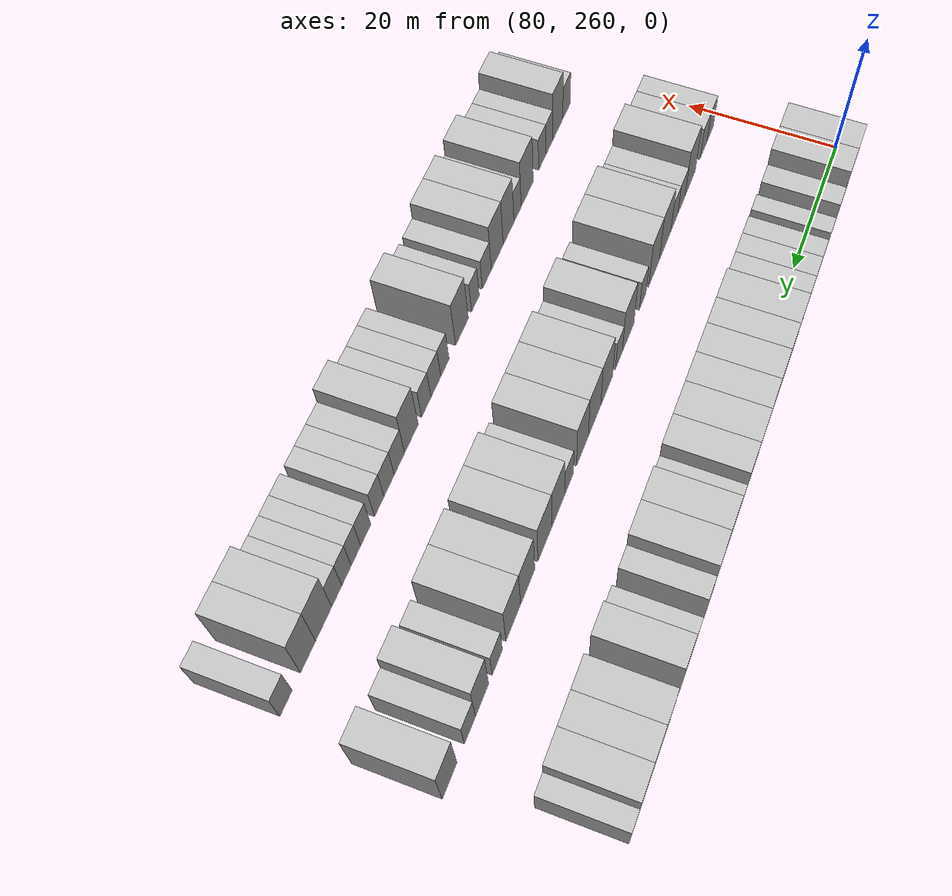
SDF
<sdf version="1.6">
 <world name="default">
  <model name="building_679">
   <static>1</static>
   <pose>82.0000 264.7069 0 0.000000 0.000000 0.000000</pose>
   <link name="link">
    <pose>0 0 4.50 0 0 0</pose>
    <collision name="collision"><geometry><box><size>10.0000 3.9704 9.0000</size></box></geometry></collision>
    <visual name="visual">
     <cast_shadows>0</cast_shadows>
     <geometry><box><size>10.0000 3.9704 9.0000</size></box></geometry>
     <material>
      <script>
       <uri>model://HANNAS_wall/materials/scripts</uri>
       <uri>model://HANNAS_wall/materials/textures</uri>
       <name>vrc/HANNAS_wall</name>
      </script>
     </material>
    </visual>
   </link>
  </model>
  <model name="building_680">
   <static>1</static>
   <pose>82.0000 268.6037 0 0.000000 0.000000 0.000000</pose>
   <link name="link">
    <pose>0 0 4.50 0 0 0</pose>
    <collision name="collision"><geometry><box><size>10.0000 3.8233 9.0000</size></box></geometry></collision>
    <visual name="visual">
     <cast_shadows>0</cast_shadows>
     <geometry><box><size>10.0000 3.8233 9.0000</size></box></geometry>
     <material>
      <script>
       <uri>model://HANNAS_wall/materials/scripts</uri>
       <uri>model://HANNAS_wall/materials/textures</uri>
       <name>vrc/HANNAS_wall</name>
      </script>
     </material>
    </visual>
   </link>
  </model>
  <model name="building_681">
   <static>1</static>
   <pose>82.0000 271.9528 0 0.000000 0.000000 0.000000</pose>
   <link name="link">
    <pose>0 0 3.00 0 0 0</pose>
    <collision name="collision"><geometry><box><size>10.0000 2.8749 6.0000</size></box></geometry></collision>
    <visual name="visual">
     <cast_shadows>0</cast_shadows>
     <geometry><box><size>10.0000 2.8749 6.0000</size></box></geometry>
     <material>
      <script>
       <uri>model://HANNAS_wall/materials/scripts</uri>
       <uri>model://HANNAS_wall/materials/textures</uri>
       <name>vrc/HANNAS_wall</name>
      </script>
     </material>
    </visual>
   </link>
  </model>
  <model name="building_682">
   <static>1</static>
   <pose>82.0000 276.6051 0 0.000000 0.000000 0.000000</pose>
   <link name="link">
    <pose>0 0 3.00 0 0 0</pose>
    <collision name="collision"><geometry><box><size>10.0000 2.4295 6.0000</size></box></geometry></collision>
    <visual name="visual">
     <cast_shadows>0</cast_shadows>
     <geometry><box><size>10.0000 2.4295 6.0000</size></box></geometry>
     <material>
      <script>
       <uri>model://HANNAS_wall/materials/scripts</uri>
       <uri>model://HANNAS_wall/materials/textures</uri>
       <name>vrc/HANNAS_wall</name>
      </script>
     </material>
    </visual>
   </link>
  </model>
  <model name="building_683">
   <static>1</static>
   <pose>82.0000 280.1371 0 0.000000 0.000000 0.000000</pose>
   <link name="link">
    <pose>0 0 3.00 0 0 0</pose>
    <collision name="collision"><geometry><box><size>10.0000 2.6345 6.0000</size></box></geometry></collision>
    <visual name="visual">
     <cast_shadows>0</cast_shadows>
     <geometry><box><size>10.0000 2.6345 6.0000</size></box></geometry>
     <material>
      <script>
       <uri>model://HANNAS_wall/materials/scripts</uri>
       <uri>model://HANNAS_wall/materials/textures</uri>
       <name>vrc/HANNAS_wall</name>
      </script>
     </material>
    </visual>
   </link>
  </model>
  <model name="building_684">
   <static>1</static>
   <pose>82.0000 282.9017 0 0.000000 0.000000 0.000000</pose>
   <link name="link">
    <pose>0 0 3.00 0 0 0</pose>
    <collision name="collision"><geometry><box><size>10.0000 2.8947 6.0000</size></box></geometry></collision>
    <visual name="visual">
     <cast_shadows>0</cast_shadows>
     <geometry><box><size>10.0000 2.8947 6.0000</size></box></geometry>
     <material>
      <script>
       <uri>model://HANNAS_wall/materials/scripts</uri>
       <uri>model://HANNAS_wall/materials/textures</uri>
       <name>vrc/HANNAS_wall</name>
      </script>
     </material>
    </visual>
   </link>
  </model>
  <model name="building_685">
   <static>1</static>
   <pose>82.0000 285.6525 0 0.000000 0.000000 0.000000</pose>
   <link name="link">
    <pose>0 0 3.00 0 0 0</pose>
    <collision name="collision"><geometry><box><size>10.0000 2.6069 6.0000</size></box></geometry></collision>
    <visual name="visual">
     <cast_shadows>0</cast_shadows>
     <geometry><box><size>10.0000 2.6069 6.0000</size></box></geometry>
     <material>
      <script>
       <uri>model://HANNAS_wall/materials/scripts</uri>
       <uri>model://HANNAS_wall/materials/textures</uri>
       <name>vrc/HANNAS_wall</name>
      </script>
     </material>
    </visual>
   </link>
  </model>
  <model name="building_686">
   <static>1</static>
   <pose>82.0000 291.0677 0 0.000000 0.000000 0.000000</pose>
   <link name="link">
    <pose>0 0 4.50 0 0 0</pose>
    <collision name="collision"><geometry><box><size>10.0000 4.2234 9.0000</size></box></geometry></collision>
    <visual name="visual">
     <cast_shadows>0</cast_shadows>
     <geometry><box><size>10.0000 4.2234 9.0000</size></box></geometry>
     <material>
      <script>
       <uri>model://HANNAS_wall/materials/scripts</uri>
       <uri>model://HANNAS_wall/materials/textures</uri>
       <name>vrc/HANNAS_wall</name>
      </script>
     </material>
    </visual>
   </link>
  </model>
  <model name="building_687">
   <static>1</static>
   <pose>82.0000 294.9808 0 0.000000 0.000000 0.000000</pose>
   <link name="link">
    <pose>0 0 4.50 0 0 0</pose>
    <collision name="collision"><geometry><box><size>10.0000 3.6028 9.0000</size></box></geometry></collision>
    <visual name="visual">
     <cast_shadows>0</cast_shadows>
     <geometry><box><size>10.0000 3.6028 9.0000</size></box></geometry>
     <material>
      <script>
       <uri>model://HANNAS_wall/materials/scripts</uri>
       <uri>model://HANNAS_wall/materials/textures</uri>
       <name>vrc/HANNAS_wall</name>
      </script>
     </material>
    </visual>
   </link>
  </model>
  <model name="building_688">
   <static>1</static>
   <pose>82.0000 298.7942 0 0.000000 0.000000 0.000000</pose>
   <link name="link">
    <pose>0 0 4.50 0 0 0</pose>
    <collision name="collision"><geometry><box><size>10.0000 4.0241 9.0000</size></box></geometry></collision>
    <visual name="visual">
     <cast_shadows>0</cast_shadows>
     <geometry><box><size>10.0000 4.0241 9.0000</size></box></geometry>
     <material>
      <script>
       <uri>model://HANNAS_wall/materials/scripts</uri>
       <uri>model://HANNAS_wall/materials/textures</uri>
       <name>vrc/HANNAS_wall</name>
      </script>
     </material>
    </visual>
   </link>
  </model>
  <model name="building_689">
   <static>1</static>
   <pose>82.0000 302.7823 0 0.000000 0.000000 0.000000</pose>
   <link name="link">
    <pose>0 0 4.50 0 0 0</pose>
    <collision name="collision"><geometry><box><size>10.0000 3.9522 9.0000</size></box></geometry></collision>
    <visual name="visual">
     <cast_shadows>0</cast_shadows>
     <geometry><box><size>10.0000 3.9522 9.0000</size></box></geometry>
     <material>
      <script>
       <uri>model://HANNAS_wall/materials/scripts</uri>
       <uri>model://HANNAS_wall/materials/textures</uri>
       <name>vrc/HANNAS_wall</name>
      </script>
     </material>
    </visual>
   </link>
  </model>
  <model name="building_690">
   <static>1</static>
   <pose>82.0000 306.9329 0 0.000000 0.000000 0.000000</pose>
   <link name="link">
    <pose>0 0 4.50 0 0 0</pose>
    <collision name="collision"><geometry><box><size>10.0000 4.3490 9.0000</size></box></geometry></collision>
    <visual name="visual">
     <cast_shadows>0</cast_shadows>
     <geometry><box><size>10.0000 4.3490 9.0000</size></box></geometry>
     <material>
      <script>
       <uri>model://HANNAS_wall/materials/scripts</uri>
       <uri>model://HANNAS_wall/materials/textures</uri>
       <name>vrc/HANNAS_wall</name>
      </script>
     </material>
    </visual>
   </link>
  </model>
  <model name="building_691">
   <static>1</static>
   <pose>82.0000 311.0670 0 0.000000 0.000000 0.000000</pose>
   <link name="link">
    <pose>0 0 4.50 0 0 0</pose>
    <collision name="collision"><geometry><box><size>10.0000 3.9192 9.0000</size></box></geometry></collision>
    <visual name="visual">
     <cast_shadows>0</cast_shadows>
     <geometry><box><size>10.0000 3.9192 9.0000</size></box></geometry>
     <material>
      <script>
       <uri>model://HANNAS_wall/materials/scripts</uri>
       <uri>model://HANNAS_wall/materials/textures</uri>
       <name>vrc/HANNAS_wall</name>
      </script>
     </material>
    </visual>
   </link>
  </model>
  <model name="building_692">
   <static>1</static>
   <pose>82.0000 314.4142 0 0.000000 0.000000 0.000000</pose>
   <link name="link">
    <pose>0 0 3.00 0 0 0</pose>
    <collision name="collision"><geometry><box><size>10.0000 2.7752 6.0000</size></box></geometry></collision>
    <visual name="visual">
     <cast_shadows>0</cast_shadows>
     <geometry><box><size>10.0000 2.7752 6.0000</size></box></geometry>
     <material>
      <script>
       <uri>model://HANNAS_wall/materials/scripts</uri>
       <uri>model://HANNAS_wall/materials/textures</uri>
       <name>vrc/HANNAS_wall</name>
      </script>
     </material>
    </visual>
   </link>
  </model>
  <model name="building_693">
   <static>1</static>
   <pose>82.0000 317.8667 0 0.000000 0.000000 0.000000</pose>
   <link name="link">
    <pose>0 0 4.50 0 0 0</pose>
    <collision name="collision"><geometry><box><size>10.0000 4.1298 9.0000</size></box></geometry></collision>
    <visual name="visual">
     <cast_shadows>0</cast_shadows>
     <geometry><box><size>10.0000 4.1298 9.0000</size></box></geometry>
     <material>
      <script>
       <uri>model://HANNAS_wall/materials/scripts</uri>
       <uri>model://HANNAS_wall/materials/textures</uri>
       <name>vrc/HANNAS_wall</name>
      </script>
     </material>
    </visual>
   </link>
  </model>
  <model name="building_694">
   <static>1</static>
   <pose>82.0000 322.0335 0 0.000000 0.000000 0.000000</pose>
   <link name="link">
    <pose>0 0 4.50 0 0 0</pose>
    <collision name="collision"><geometry><box><size>10.0000 4.2038 9.0000</size></box></geometry></collision>
    <visual name="visual">
     <cast_shadows>0</cast_shadows>
     <geometry><box><size>10.0000 4.2038 9.0000</size></box></geometry>
     <material>
      <script>
       <uri>model://HANNAS_wall/materials/scripts</uri>
       <uri>model://HANNAS_wall/materials/textures</uri>
       <name>vrc/HANNAS_wall</name>
      </script>
     </material>
    </visual>
   </link>
  </model>
  <model name="building_695">
   <static>1</static>
   <pose>82.0000 325.5209 0 0.000000 0.000000 0.000000</pose>
   <link name="link">
    <pose>0 0 3.00 0 0 0</pose>
    <collision name="collision"><geometry><box><size>10.0000 2.7710 6.0000</size></box></geometry></collision>
    <visual name="visual">
     <cast_shadows>0</cast_shadows>
     <geometry><box><size>10.0000 2.7710 6.0000</size></box></geometry>
     <material>
      <script>
       <uri>model://HANNAS_wall/materials/scripts</uri>
       <uri>model://HANNAS_wall/materials/textures</uri>
       <name>vrc/HANNAS_wall</name>
      </script>
     </material>
    </visual>
   </link>
  </model>
  <model name="building_696">
   <static>1</static>
   <pose>82.0000 330.3603 0 0.000000 0.000000 0.000000</pose>
   <link name="link">
    <pose>0 0 3.00 0 0 0</pose>
    <collision name="collision"><geometry><box><size>10.0000 2.9077 6.0000</size></box></geometry></collision>
    <visual name="visual">
     <cast_shadows>0</cast_shadows>
     <geometry><box><size>10.0000 2.9077 6.0000</size></box></geometry>
     <material>
      <script>
       <uri>model://HANNAS_wall/materials/scripts</uri>
       <uri>model://HANNAS_wall/materials/textures</uri>
       <name>vrc/HANNAS_wall</name>
      </script>
     </material>
    </visual>
   </link>
  </model>
  <model name="building_697">
   <static>1</static>
   <pose>82.0000 333.7174 0 0.000000 0.000000 0.000000</pose>
   <link name="link">
    <pose>0 0 4.50 0 0 0</pose>
    <collision name="collision"><geometry><box><size>10.0000 3.8065 9.0000</size></box></geometry></collision>
    <visual name="visual">
     <cast_shadows>0</cast_shadows>
     <geometry><box><size>10.0000 3.8065 9.0000</size></box></geometry>
     <material>
      <script>
       <uri>model://HANNAS_wall/materials/scripts</uri>
       <uri>model://HANNAS_wall/materials/textures</uri>
       <name>vrc/HANNAS_wall</name>
      </script>
     </material>
    </visual>
   </link>
  </model>
  <model name="building_698">
   <static>1</static>
   <pose>82.0000 339.5370 0 0.000000 0.000000 0.000000</pose>
   <link name="link">
    <pose>0 0 4.50 0 0 0</pose>
    <collision name="collision"><geometry><box><size>10.0000 3.8326 9.0000</size></box></geometry></collision>
    <visual name="visual">
     <cast_shadows>0</cast_shadows>
     <geometry><box><size>10.0000 3.8326 9.0000</size></box></geometry>
     <material>
      <script>
       <uri>model://HANNAS_wall/materials/scripts</uri>
       <uri>model://HANNAS_wall/materials/textures</uri>
       <name>vrc/HANNAS_wall</name>
      </script>
     </material>
    </visual>
   </link>
  </model>
  <model name="building_699">
   <static>1</static>
   <pose>82.0000 343.3597 0 0.000000 0.000000 0.000000</pose>
   <link name="link">
    <pose>0 0 4.50 0 0 0</pose>
    <collision name="collision"><geometry><box><size>10.0000 3.8127 9.0000</size></box></geometry></collision>
    <visual name="visual">
     <cast_shadows>0</cast_shadows>
     <geometry><box><size>10.0000 3.8127 9.0000</size></box></geometry>
     <material>
      <script>
       <uri>model://HANNAS_wall/materials/scripts</uri>
       <uri>model://HANNAS_wall/materials/textures</uri>
       <name>vrc/HANNAS_wall</name>
      </script>
     </material>
    </visual>
   </link>
  </model>
  <model name="building_700">
   <static>1</static>
   <pose>82.0000 347.2621 0 0.000000 0.000000 0.000000</pose>
   <link name="link">
    <pose>0 0 4.50 0 0 0</pose>
    <collision name="collision"><geometry><box><size>10.0000 3.9921 9.0000</size></box></geometry></collision>
    <visual name="visual">
     <cast_shadows>0</cast_shadows>
     <geometry><box><size>10.0000 3.9921 9.0000</size></box></geometry>
     <material>
      <script>
       <uri>model://HANNAS_wall/materials/scripts</uri>
       <uri>model://HANNAS_wall/materials/textures</uri>
       <name>vrc/HANNAS_wall</name>
      </script>
     </material>
    </visual>
   </link>
  </model>
  <model name="building_701">
   <static>1</static>
   <pose>82.0000 350.4626 0 0.000000 0.000000 0.000000</pose>
   <link name="link">
    <pose>0 0 3.00 0 0 0</pose>
    <collision name="collision"><geometry><box><size>10.0000 2.4090 6.0000</size></box></geometry></collision>
    <visual name="visual">
     <cast_shadows>0</cast_shadows>
     <geometry><box><size>10.0000 2.4090 6.0000</size></box></geometry>
     <material>
      <script>
       <uri>model://HANNAS_wall/materials/scripts</uri>
       <uri>model://HANNAS_wall/materials/textures</uri>
       <name>vrc/HANNAS_wall</name>
      </script>
     </material>
    </visual>
   </link>
  </model>
  <model name="building_861">
   <static>1</static>
   <pose>101.0000 263.6172 0 0.000000 0.000000 0.000000</pose>
   <link name="link">
    <pose>0 0 3.00 0 0 0</pose>
    <collision name="collision"><geometry><box><size>10.0000 2.8604 6.0000</size></box></geometry></collision>
    <visual name="visual">
     <cast_shadows>0</cast_shadows>
     <geometry><box><size>10.0000 2.8604 6.0000</size></box></geometry>
     <material>
      <script>
       <uri>model://HANNAS_wall/materials/scripts</uri>
       <uri>model://HANNAS_wall/materials/textures</uri>
       <name>vrc/HANNAS_wall</name>
      </script>
     </material>
    </visual>
   </link>
  </model>
  <model name="building_862">
   <static>1</static>
   <pose>101.0000 266.5364 0 0.000000 0.000000 0.000000</pose>
   <link name="link">
    <pose>0 0 3.00 0 0 0</pose>
    <collision name="collision"><geometry><box><size>10.0000 2.9781 6.0000</size></box></geometry></collision>
    <visual name="visual">
     <cast_shadows>0</cast_shadows>
     <geometry><box><size>10.0000 2.9781 6.0000</size></box></geometry>
     <material>
      <script>
       <uri>model://HANNAS_wall/materials/scripts</uri>
       <uri>model://HANNAS_wall/materials/textures</uri>
       <name>vrc/HANNAS_wall</name>
      </script>
     </material>
    </visual>
   </link>
  </model>
  <model name="building_863">
   <static>1</static>
   <pose>101.0000 272.2282 0 0.000000 0.000000 0.000000</pose>
   <link name="link">
    <pose>0 0 4.50 0 0 0</pose>
    <collision name="collision"><geometry><box><size>10.0000 4.4056 9.0000</size></box></geometry></collision>
    <visual name="visual">
     <cast_shadows>0</cast_shadows>
     <geometry><box><size>10.0000 4.4056 9.0000</size></box></geometry>
     <material>
      <script>
       <uri>model://HANNAS_wall/materials/scripts</uri>
       <uri>model://HANNAS_wall/materials/textures</uri>
       <name>vrc/HANNAS_wall</name>
      </script>
     </material>
    </visual>
   </link>
  </model>
  <model name="building_864">
   <static>1</static>
   <pose>101.0000 275.9301 0 0.000000 0.000000 0.000000</pose>
   <link name="link">
    <pose>0 0 3.00 0 0 0</pose>
    <collision name="collision"><geometry><box><size>10.0000 2.9982 6.0000</size></box></geometry></collision>
    <visual name="visual">
     <cast_shadows>0</cast_shadows>
     <geometry><box><size>10.0000 2.9982 6.0000</size></box></geometry>
     <material>
      <script>
       <uri>model://HANNAS_wall/materials/scripts</uri>
       <uri>model://HANNAS_wall/materials/textures</uri>
       <name>vrc/HANNAS_wall</name>
      </script>
     </material>
    </visual>
   </link>
  </model>
  <model name="building_865">
   <static>1</static>
   <pose>101.0000 278.8644 0 0.000000 0.000000 0.000000</pose>
   <link name="link">
    <pose>0 0 3.00 0 0 0</pose>
    <collision name="collision"><geometry><box><size>10.0000 2.8704 6.0000</size></box></geometry></collision>
    <visual name="visual">
     <cast_shadows>0</cast_shadows>
     <geometry><box><size>10.0000 2.8704 6.0000</size></box></geometry>
     <material>
      <script>
       <uri>model://HANNAS_wall/materials/scripts</uri>
       <uri>model://HANNAS_wall/materials/textures</uri>
       <name>vrc/HANNAS_wall</name>
      </script>
     </material>
    </visual>
   </link>
  </model>
  <model name="building_866">
   <static>1</static>
   <pose>101.0000 282.5377 0 0.000000 0.000000 0.000000</pose>
   <link name="link">
    <pose>0 0 4.50 0 0 0</pose>
    <collision name="collision"><geometry><box><size>10.0000 4.4762 9.0000</size></box></geometry></collision>
    <visual name="visual">
     <cast_shadows>0</cast_shadows>
     <geometry><box><size>10.0000 4.4762 9.0000</size></box></geometry>
     <material>
      <script>
       <uri>model://HANNAS_wall/materials/scripts</uri>
       <uri>model://HANNAS_wall/materials/textures</uri>
       <name>vrc/HANNAS_wall</name>
      </script>
     </material>
    </visual>
   </link>
  </model>
  <model name="building_867">
   <static>1</static>
   <pose>101.0000 286.8789 0 0.000000 0.000000 0.000000</pose>
   <link name="link">
    <pose>0 0 4.50 0 0 0</pose>
    <collision name="collision"><geometry><box><size>10.0000 4.2062 9.0000</size></box></geometry></collision>
    <visual name="visual">
     <cast_shadows>0</cast_shadows>
     <geometry><box><size>10.0000 4.2062 9.0000</size></box></geometry>
     <material>
      <script>
       <uri>model://HANNAS_wall/materials/scripts</uri>
       <uri>model://HANNAS_wall/materials/textures</uri>
       <name>vrc/HANNAS_wall</name>
      </script>
     </material>
    </visual>
   </link>
  </model>
  <model name="building_868">
   <static>1</static>
   <pose>101.0000 291.2437 0 0.000000 0.000000 0.000000</pose>
   <link name="link">
    <pose>0 0 3.00 0 0 0</pose>
    <collision name="collision"><geometry><box><size>10.0000 2.5235 6.0000</size></box></geometry></collision>
    <visual name="visual">
     <cast_shadows>0</cast_shadows>
     <geometry><box><size>10.0000 2.5235 6.0000</size></box></geometry>
     <material>
      <script>
       <uri>model://HANNAS_wall/materials/scripts</uri>
       <uri>model://HANNAS_wall/materials/textures</uri>
       <name>vrc/HANNAS_wall</name>
      </script>
     </material>
    </visual>
   </link>
  </model>
  <model name="building_869">
   <static>1</static>
   <pose>101.0000 296.6706 0 0.000000 0.000000 0.000000</pose>
   <link name="link">
    <pose>0 0 4.50 0 0 0</pose>
    <collision name="collision"><geometry><box><size>10.0000 4.3302 9.0000</size></box></geometry></collision>
    <visual name="visual">
     <cast_shadows>0</cast_shadows>
     <geometry><box><size>10.0000 4.3302 9.0000</size></box></geometry>
     <material>
      <script>
       <uri>model://HANNAS_wall/materials/scripts</uri>
       <uri>model://HANNAS_wall/materials/textures</uri>
       <name>vrc/HANNAS_wall</name>
      </script>
     </material>
    </visual>
   </link>
  </model>
  <model name="building_870">
   <static>1</static>
   <pose>101.0000 300.0741 0 0.000000 0.000000 0.000000</pose>
   <link name="link">
    <pose>0 0 3.00 0 0 0</pose>
    <collision name="collision"><geometry><box><size>10.0000 2.4767 6.0000</size></box></geometry></collision>
    <visual name="visual">
     <cast_shadows>0</cast_shadows>
     <geometry><box><size>10.0000 2.4767 6.0000</size></box></geometry>
     <material>
      <script>
       <uri>model://HANNAS_wall/materials/scripts</uri>
       <uri>model://HANNAS_wall/materials/textures</uri>
       <name>vrc/HANNAS_wall</name>
      </script>
     </material>
    </visual>
   </link>
  </model>
  <model name="building_871">
   <static>1</static>
   <pose>101.0000 304.4158 0 0.000000 0.000000 0.000000</pose>
   <link name="link">
    <pose>0 0 4.50 0 0 0</pose>
    <collision name="collision"><geometry><box><size>10.0000 4.2067 9.0000</size></box></geometry></collision>
    <visual name="visual">
     <cast_shadows>0</cast_shadows>
     <geometry><box><size>10.0000 4.2067 9.0000</size></box></geometry>
     <material>
      <script>
       <uri>model://HANNAS_wall/materials/scripts</uri>
       <uri>model://HANNAS_wall/materials/textures</uri>
       <name>vrc/HANNAS_wall</name>
      </script>
     </material>
    </visual>
   </link>
  </model>
  <model name="building_872">
   <static>1</static>
   <pose>101.0000 308.6493 0 0.000000 0.000000 0.000000</pose>
   <link name="link">
    <pose>0 0 4.50 0 0 0</pose>
    <collision name="collision"><geometry><box><size>10.0000 4.2604 9.0000</size></box></geometry></collision>
    <visual name="visual">
     <cast_shadows>0</cast_shadows>
     <geometry><box><size>10.0000 4.2604 9.0000</size></box></geometry>
     <material>
      <script>
       <uri>model://HANNAS_wall/materials/scripts</uri>
       <uri>model://HANNAS_wall/materials/textures</uri>
       <name>vrc/HANNAS_wall</name>
      </script>
     </material>
    </visual>
   </link>
  </model>
  <model name="building_873">
   <static>1</static>
   <pose>101.0000 312.7749 0 0.000000 0.000000 0.000000</pose>
   <link name="link">
    <pose>0 0 4.50 0 0 0</pose>
    <collision name="collision"><geometry><box><size>10.0000 3.9908 9.0000</size></box></geometry></collision>
    <visual name="visual">
     <cast_shadows>0</cast_shadows>
     <geometry><box><size>10.0000 3.9908 9.0000</size></box></geometry>
     <material>
      <script>
       <uri>model://HANNAS_wall/materials/scripts</uri>
       <uri>model://HANNAS_wall/materials/textures</uri>
       <name>vrc/HANNAS_wall</name>
      </script>
     </material>
    </visual>
   </link>
  </model>
  <model name="building_874">
   <static>1</static>
   <pose>101.0000 317.2005 0 0.000000 0.000000 0.000000</pose>
   <link name="link">
    <pose>0 0 3.00 0 0 0</pose>
    <collision name="collision"><geometry><box><size>10.0000 2.8604 6.0000</size></box></geometry></collision>
    <visual name="visual">
     <cast_shadows>0</cast_shadows>
     <geometry><box><size>10.0000 2.8604 6.0000</size></box></geometry>
     <material>
      <script>
       <uri>model://HANNAS_wall/materials/scripts</uri>
       <uri>model://HANNAS_wall/materials/textures</uri>
       <name>vrc/HANNAS_wall</name>
      </script>
     </material>
    </visual>
   </link>
  </model>
  <model name="building_875">
   <static>1</static>
   <pose>101.0000 320.7137 0 0.000000 0.000000 0.000000</pose>
   <link name="link">
    <pose>0 0 4.50 0 0 0</pose>
    <collision name="collision"><geometry><box><size>10.0000 4.1659 9.0000</size></box></geometry></collision>
    <visual name="visual">
     <cast_shadows>0</cast_shadows>
     <geometry><box><size>10.0000 4.1659 9.0000</size></box></geometry>
     <material>
      <script>
       <uri>model://HANNAS_wall/materials/scripts</uri>
       <uri>model://HANNAS_wall/materials/textures</uri>
       <name>vrc/HANNAS_wall</name>
      </script>
     </material>
    </visual>
   </link>
  </model>
  <model name="building_876">
   <static>1</static>
   <pose>101.0000 324.9528 0 0.000000 0.000000 0.000000</pose>
   <link name="link">
    <pose>0 0 4.50 0 0 0</pose>
    <collision name="collision"><geometry><box><size>10.0000 4.3123 9.0000</size></box></geometry></collision>
    <visual name="visual">
     <cast_shadows>0</cast_shadows>
     <geometry><box><size>10.0000 4.3123 9.0000</size></box></geometry>
     <material>
      <script>
       <uri>model://HANNAS_wall/materials/scripts</uri>
       <uri>model://HANNAS_wall/materials/textures</uri>
       <name>vrc/HANNAS_wall</name>
      </script>
     </material>
    </visual>
   </link>
  </model>
  <model name="building_877">
   <static>1</static>
   <pose>101.0000 330.2401 0 0.000000 0.000000 0.000000</pose>
   <link name="link">
    <pose>0 0 4.50 0 0 0</pose>
    <collision name="collision"><geometry><box><size>10.0000 4.2623 9.0000</size></box></geometry></collision>
    <visual name="visual">
     <cast_shadows>0</cast_shadows>
     <geometry><box><size>10.0000 4.2623 9.0000</size></box></geometry>
     <material>
      <script>
       <uri>model://HANNAS_wall/materials/scripts</uri>
       <uri>model://HANNAS_wall/materials/textures</uri>
       <name>vrc/HANNAS_wall</name>
      </script>
     </material>
    </visual>
   </link>
  </model>
  <model name="building_878">
   <static>1</static>
   <pose>101.0000 334.5353 0 0.000000 0.000000 0.000000</pose>
   <link name="link">
    <pose>0 0 4.50 0 0 0</pose>
    <collision name="collision"><geometry><box><size>10.0000 4.3280 9.0000</size></box></geometry></collision>
    <visual name="visual">
     <cast_shadows>0</cast_shadows>
     <geometry><box><size>10.0000 4.3280 9.0000</size></box></geometry>
     <material>
      <script>
       <uri>model://HANNAS_wall/materials/scripts</uri>
       <uri>model://HANNAS_wall/materials/textures</uri>
       <name>vrc/HANNAS_wall</name>
      </script>
     </material>
    </visual>
   </link>
  </model>
  <model name="building_879">
   <static>1</static>
   <pose>101.0000 339.1579 0 0.000000 0.000000 0.000000</pose>
   <link name="link">
    <pose>0 0 3.00 0 0 0</pose>
    <collision name="collision"><geometry><box><size>10.0000 2.9172 6.0000</size></box></geometry></collision>
    <visual name="visual">
     <cast_shadows>0</cast_shadows>
     <geometry><box><size>10.0000 2.9172 6.0000</size></box></geometry>
     <material>
      <script>
       <uri>model://HANNAS_wall/materials/scripts</uri>
       <uri>model://HANNAS_wall/materials/textures</uri>
       <name>vrc/HANNAS_wall</name>
      </script>
     </material>
    </visual>
   </link>
  </model>
  <model name="building_880">
   <static>1</static>
   <pose>101.0000 343.4634 0 0.000000 0.000000 0.000000</pose>
   <link name="link">
    <pose>0 0 4.50 0 0 0</pose>
    <collision name="collision"><geometry><box><size>10.0000 3.6937 9.0000</size></box></geometry></collision>
    <visual name="visual">
     <cast_shadows>0</cast_shadows>
     <geometry><box><size>10.0000 3.6937 9.0000</size></box></geometry>
     <material>
      <script>
       <uri>model://HANNAS_wall/materials/scripts</uri>
       <uri>model://HANNAS_wall/materials/textures</uri>
       <name>vrc/HANNAS_wall</name>
      </script>
     </material>
    </visual>
   </link>
  </model>
  <model name="building_881">
   <static>1</static>
   <pose>101.0000 346.7943 0 0.000000 0.000000 0.000000</pose>
   <link name="link">
    <pose>0 0 3.00 0 0 0</pose>
    <collision name="collision"><geometry><box><size>10.0000 2.9681 6.0000</size></box></geometry></collision>
    <visual name="visual">
     <cast_shadows>0</cast_shadows>
     <geometry><box><size>10.0000 2.9681 6.0000</size></box></geometry>
     <material>
      <script>
       <uri>model://HANNAS_wall/materials/scripts</uri>
       <uri>model://HANNAS_wall/materials/textures</uri>
       <name>vrc/HANNAS_wall</name>
      </script>
     </material>
    </visual>
   </link>
  </model>
  <model name="building_882">
   <static>1</static>
   <pose>101.0000 352.2059 0 0.000000 0.000000 0.000000</pose>
   <link name="link">
    <pose>0 0 4.50 0 0 0</pose>
    <collision name="collision"><geometry><box><size>10.0000 3.8553 9.0000</size></box></geometry></collision>
    <visual name="visual">
     <cast_shadows>0</cast_shadows>
     <geometry><box><size>10.0000 3.8553 9.0000</size></box></geometry>
     <material>
      <script>
       <uri>model://HANNAS_wall/materials/scripts</uri>
       <uri>model://HANNAS_wall/materials/textures</uri>
       <name>vrc/HANNAS_wall</name>
      </script>
     </material>
    </visual>
   </link>
  </model>
  <model name="building_1036">
   <static>1</static>
   <pose>120.0000 266.5243 0 0.000000 0.000000 0.000000</pose>
   <link name="link">
    <pose>0 0 3.00 0 0 0</pose>
    <collision name="collision"><geometry><box><size>10.0000 2.8704 6.0000</size></box></geometry></collision>
    <visual name="visual">
     <cast_shadows>0</cast_shadows>
     <geometry><box><size>10.0000 2.8704 6.0000</size></box></geometry>
     <material>
      <script>
       <uri>model://HANNAS_wall/materials/scripts</uri>
       <uri>model://HANNAS_wall/materials/textures</uri>
       <name>vrc/HANNAS_wall</name>
      </script>
     </material>
    </visual>
   </link>
  </model>
  <model name="building_1037">
   <static>1</static>
   <pose>120.0000 269.8748 0 0.000000 0.000000 0.000000</pose>
   <link name="link">
    <pose>0 0 4.50 0 0 0</pose>
    <collision name="collision"><geometry><box><size>10.0000 3.8304 9.0000</size></box></geometry></collision>
    <visual name="visual">
     <cast_shadows>0</cast_shadows>
     <geometry><box><size>10.0000 3.8304 9.0000</size></box></geometry>
     <material>
      <script>
       <uri>model://HANNAS_wall/materials/scripts</uri>
       <uri>model://HANNAS_wall/materials/textures</uri>
       <name>vrc/HANNAS_wall</name>
      </script>
     </material>
    </visual>
   </link>
  </model>
  <model name="building_1038">
   <static>1</static>
   <pose>120.0000 273.0247 0 0.000000 0.000000 0.000000</pose>
   <link name="link">
    <pose>0 0 3.00 0 0 0</pose>
    <collision name="collision"><geometry><box><size>10.0000 2.4694 6.0000</size></box></geometry></collision>
    <visual name="visual">
     <cast_shadows>0</cast_shadows>
     <geometry><box><size>10.0000 2.4694 6.0000</size></box></geometry>
     <material>
      <script>
       <uri>model://HANNAS_wall/materials/scripts</uri>
       <uri>model://HANNAS_wall/materials/textures</uri>
       <name>vrc/HANNAS_wall</name>
      </script>
     </material>
    </visual>
   </link>
  </model>
  <model name="building_1039">
   <static>1</static>
   <pose>120.0000 275.5987 0 0.000000 0.000000 0.000000</pose>
   <link name="link">
    <pose>0 0 3.00 0 0 0</pose>
    <collision name="collision"><geometry><box><size>10.0000 2.6786 6.0000</size></box></geometry></collision>
    <visual name="visual">
     <cast_shadows>0</cast_shadows>
     <geometry><box><size>10.0000 2.6786 6.0000</size></box></geometry>
     <material>
      <script>
       <uri>model://HANNAS_wall/materials/scripts</uri>
       <uri>model://HANNAS_wall/materials/textures</uri>
       <name>vrc/HANNAS_wall</name>
      </script>
     </material>
    </visual>
   </link>
  </model>
  <model name="building_1040">
   <static>1</static>
   <pose>120.0000 281.0720 0 0.000000 0.000000 0.000000</pose>
   <link name="link">
    <pose>0 0 4.50 0 0 0</pose>
    <collision name="collision"><geometry><box><size>10.0000 4.2680 9.0000</size></box></geometry></collision>
    <visual name="visual">
     <cast_shadows>0</cast_shadows>
     <geometry><box><size>10.0000 4.2680 9.0000</size></box></geometry>
     <material>
      <script>
       <uri>model://HANNAS_wall/materials/scripts</uri>
       <uri>model://HANNAS_wall/materials/textures</uri>
       <name>vrc/HANNAS_wall</name>
      </script>
     </material>
    </visual>
   </link>
  </model>
  <model name="building_1041">
   <static>1</static>
   <pose>120.0000 284.4486 0 0.000000 0.000000 0.000000</pose>
   <link name="link">
    <pose>0 0 3.00 0 0 0</pose>
    <collision name="collision"><geometry><box><size>10.0000 2.4851 6.0000</size></box></geometry></collision>
    <visual name="visual">
     <cast_shadows>0</cast_shadows>
     <geometry><box><size>10.0000 2.4851 6.0000</size></box></geometry>
     <material>
      <script>
       <uri>model://HANNAS_wall/materials/scripts</uri>
       <uri>model://HANNAS_wall/materials/textures</uri>
       <name>vrc/HANNAS_wall</name>
      </script>
     </material>
    </visual>
   </link>
  </model>
  <model name="building_1042">
   <static>1</static>
   <pose>120.0000 287.5388 0 0.000000 0.000000 0.000000</pose>
   <link name="link">
    <pose>0 0 4.50 0 0 0</pose>
    <collision name="collision"><geometry><box><size>10.0000 3.6953 9.0000</size></box></geometry></collision>
    <visual name="visual">
     <cast_shadows>0</cast_shadows>
     <geometry><box><size>10.0000 3.6953 9.0000</size></box></geometry>
     <material>
      <script>
       <uri>model://HANNAS_wall/materials/scripts</uri>
       <uri>model://HANNAS_wall/materials/textures</uri>
       <name>vrc/HANNAS_wall</name>
      </script>
     </material>
    </visual>
   </link>
  </model>
  <model name="building_1043">
   <static>1</static>
   <pose>120.0000 291.3859 0 0.000000 0.000000 0.000000</pose>
   <link name="link">
    <pose>0 0 4.50 0 0 0</pose>
    <collision name="collision"><geometry><box><size>10.0000 3.9988 9.0000</size></box></geometry></collision>
    <visual name="visual">
     <cast_shadows>0</cast_shadows>
     <geometry><box><size>10.0000 3.9988 9.0000</size></box></geometry>
     <material>
      <script>
       <uri>model://HANNAS_wall/materials/scripts</uri>
       <uri>model://HANNAS_wall/materials/textures</uri>
       <name>vrc/HANNAS_wall</name>
      </script>
     </material>
    </visual>
   </link>
  </model>
  <model name="building_1044">
   <static>1</static>
   <pose>120.0000 294.8809 0 0.000000 0.000000 0.000000</pose>
   <link name="link">
    <pose>0 0 3.00 0 0 0</pose>
    <collision name="collision"><geometry><box><size>10.0000 2.9913 6.0000</size></box></geometry></collision>
    <visual name="visual">
     <cast_shadows>0</cast_shadows>
     <geometry><box><size>10.0000 2.9913 6.0000</size></box></geometry>
     <material>
      <script>
       <uri>model://HANNAS_wall/materials/scripts</uri>
       <uri>model://HANNAS_wall/materials/textures</uri>
       <name>vrc/HANNAS_wall</name>
      </script>
     </material>
    </visual>
   </link>
  </model>
  <model name="building_1045">
   <static>1</static>
   <pose>120.0000 298.6230 0 0.000000 0.000000 0.000000</pose>
   <link name="link">
    <pose>0 0 3.00 0 0 0</pose>
    <collision name="collision"><geometry><box><size>10.0000 2.4930 6.0000</size></box></geometry></collision>
    <visual name="visual">
     <cast_shadows>0</cast_shadows>
     <geometry><box><size>10.0000 2.4930 6.0000</size></box></geometry>
     <material>
      <script>
       <uri>model://HANNAS_wall/materials/scripts</uri>
       <uri>model://HANNAS_wall/materials/textures</uri>
       <name>vrc/HANNAS_wall</name>
      </script>
     </material>
    </visual>
   </link>
  </model>
  <model name="building_1046">
   <static>1</static>
   <pose>120.0000 302.8904 0 0.000000 0.000000 0.000000</pose>
   <link name="link">
    <pose>0 0 4.50 0 0 0</pose>
    <collision name="collision"><geometry><box><size>10.0000 4.0418 9.0000</size></box></geometry></collision>
    <visual name="visual">
     <cast_shadows>0</cast_shadows>
     <geometry><box><size>10.0000 4.0418 9.0000</size></box></geometry>
     <material>
      <script>
       <uri>model://HANNAS_wall/materials/scripts</uri>
       <uri>model://HANNAS_wall/materials/textures</uri>
       <name>vrc/HANNAS_wall</name>
      </script>
     </material>
    </visual>
   </link>
  </model>
  <model name="building_1047">
   <static>1</static>
   <pose>120.0000 308.1782 0 0.000000 0.000000 0.000000</pose>
   <link name="link">
    <pose>0 0 3.00 0 0 0</pose>
    <collision name="collision"><geometry><box><size>10.0000 2.5337 6.0000</size></box></geometry></collision>
    <visual name="visual">
     <cast_shadows>0</cast_shadows>
     <geometry><box><size>10.0000 2.5337 6.0000</size></box></geometry>
     <material>
      <script>
       <uri>model://HANNAS_wall/materials/scripts</uri>
       <uri>model://HANNAS_wall/materials/textures</uri>
       <name>vrc/HANNAS_wall</name>
      </script>
     </material>
    </visual>
   </link>
  </model>
  <model name="building_1048">
   <static>1</static>
   <pose>120.0000 310.9307 0 0.000000 0.000000 0.000000</pose>
   <link name="link">
    <pose>0 0 3.00 0 0 0</pose>
    <collision name="collision"><geometry><box><size>10.0000 2.9715 6.0000</size></box></geometry></collision>
    <visual name="visual">
     <cast_shadows>0</cast_shadows>
     <geometry><box><size>10.0000 2.9715 6.0000</size></box></geometry>
     <material>
      <script>
       <uri>model://HANNAS_wall/materials/scripts</uri>
       <uri>model://HANNAS_wall/materials/textures</uri>
       <name>vrc/HANNAS_wall</name>
      </script>
     </material>
    </visual>
   </link>
  </model>
  <model name="building_1049">
   <static>1</static>
   <pose>120.0000 313.8014 0 0.000000 0.000000 0.000000</pose>
   <link name="link">
    <pose>0 0 3.00 0 0 0</pose>
    <collision name="collision"><geometry><box><size>10.0000 2.7698 6.0000</size></box></geometry></collision>
    <visual name="visual">
     <cast_shadows>0</cast_shadows>
     <geometry><box><size>10.0000 2.7698 6.0000</size></box></geometry>
     <material>
      <script>
       <uri>model://HANNAS_wall/materials/scripts</uri>
       <uri>model://HANNAS_wall/materials/textures</uri>
       <name>vrc/HANNAS_wall</name>
      </script>
     </material>
    </visual>
   </link>
  </model>
  <model name="building_1050">
   <static>1</static>
   <pose>120.0000 318.1487 0 0.000000 0.000000 0.000000</pose>
   <link name="link">
    <pose>0 0 4.50 0 0 0</pose>
    <collision name="collision"><geometry><box><size>10.0000 3.9247 9.0000</size></box></geometry></collision>
    <visual name="visual">
     <cast_shadows>0</cast_shadows>
     <geometry><box><size>10.0000 3.9247 9.0000</size></box></geometry>
     <material>
      <script>
       <uri>model://HANNAS_wall/materials/scripts</uri>
       <uri>model://HANNAS_wall/materials/textures</uri>
       <name>vrc/HANNAS_wall</name>
      </script>
     </material>
    </visual>
   </link>
  </model>
  <model name="building_1051">
   <static>1</static>
   <pose>120.0000 321.5841 0 0.000000 0.000000 0.000000</pose>
   <link name="link">
    <pose>0 0 3.00 0 0 0</pose>
    <collision name="collision"><geometry><box><size>10.0000 2.9460 6.0000</size></box></geometry></collision>
    <visual name="visual">
     <cast_shadows>0</cast_shadows>
     <geometry><box><size>10.0000 2.9460 6.0000</size></box></geometry>
     <material>
      <script>
       <uri>model://HANNAS_wall/materials/scripts</uri>
       <uri>model://HANNAS_wall/materials/textures</uri>
       <name>vrc/HANNAS_wall</name>
      </script>
     </material>
    </visual>
   </link>
  </model>
  <model name="building_1052">
   <static>1</static>
   <pose>120.0000 324.4817 0 0.000000 0.000000 0.000000</pose>
   <link name="link">
    <pose>0 0 3.00 0 0 0</pose>
    <collision name="collision"><geometry><box><size>10.0000 2.8492 6.0000</size></box></geometry></collision>
    <visual name="visual">
     <cast_shadows>0</cast_shadows>
     <geometry><box><size>10.0000 2.8492 6.0000</size></box></geometry>
     <material>
      <script>
       <uri>model://HANNAS_wall/materials/scripts</uri>
       <uri>model://HANNAS_wall/materials/textures</uri>
       <name>vrc/HANNAS_wall</name>
      </script>
     </material>
    </visual>
   </link>
  </model>
  <model name="building_1053">
   <static>1</static>
   <pose>120.0000 327.2007 0 0.000000 0.000000 0.000000</pose>
   <link name="link">
    <pose>0 0 3.00 0 0 0</pose>
    <collision name="collision"><geometry><box><size>10.0000 2.5887 6.0000</size></box></geometry></collision>
    <visual name="visual">
     <cast_shadows>0</cast_shadows>
     <geometry><box><size>10.0000 2.5887 6.0000</size></box></geometry>
     <material>
      <script>
       <uri>model://HANNAS_wall/materials/scripts</uri>
       <uri>model://HANNAS_wall/materials/textures</uri>
       <name>vrc/HANNAS_wall</name>
      </script>
     </material>
    </visual>
   </link>
  </model>
  <model name="building_1054">
   <static>1</static>
   <pose>120.0000 330.8572 0 0.000000 0.000000 0.000000</pose>
   <link name="link">
    <pose>0 0 3.00 0 0 0</pose>
    <collision name="collision"><geometry><box><size>10.0000 2.7245 6.0000</size></box></geometry></collision>
    <visual name="visual">
     <cast_shadows>0</cast_shadows>
     <geometry><box><size>10.0000 2.7245 6.0000</size></box></geometry>
     <material>
      <script>
       <uri>model://HANNAS_wall/materials/scripts</uri>
       <uri>model://HANNAS_wall/materials/textures</uri>
       <name>vrc/HANNAS_wall</name>
      </script>
     </material>
    </visual>
   </link>
  </model>
  <model name="building_1055">
   <static>1</static>
   <pose>120.0000 333.4667 0 0.000000 0.000000 0.000000</pose>
   <link name="link">
    <pose>0 0 3.00 0 0 0</pose>
    <collision name="collision"><geometry><box><size>10.0000 2.4945 6.0000</size></box></geometry></collision>
    <visual name="visual">
     <cast_shadows>0</cast_shadows>
     <geometry><box><size>10.0000 2.4945 6.0000</size></box></geometry>
     <material>
      <script>
       <uri>model://HANNAS_wall/materials/scripts</uri>
       <uri>model://HANNAS_wall/materials/textures</uri>
       <name>vrc/HANNAS_wall</name>
      </script>
     </material>
    </visual>
   </link>
  </model>
  <model name="building_1056">
   <static>1</static>
   <pose>120.0000 335.9332 0 0.000000 0.000000 0.000000</pose>
   <link name="link">
    <pose>0 0 3.00 0 0 0</pose>
    <collision name="collision"><geometry><box><size>10.0000 2.4383 6.0000</size></box></geometry></collision>
    <visual name="visual">
     <cast_shadows>0</cast_shadows>
     <geometry><box><size>10.0000 2.4383 6.0000</size></box></geometry>
     <material>
      <script>
       <uri>model://HANNAS_wall/materials/scripts</uri>
       <uri>model://HANNAS_wall/materials/textures</uri>
       <name>vrc/HANNAS_wall</name>
      </script>
     </material>
    </visual>
   </link>
  </model>
  <model name="building_1057">
   <static>1</static>
   <pose>120.0000 338.4377 0 0.000000 0.000000 0.000000</pose>
   <link name="link">
    <pose>0 0 3.00 0 0 0</pose>
    <collision name="collision"><geometry><box><size>10.0000 2.5707 6.0000</size></box></geometry></collision>
    <visual name="visual">
     <cast_shadows>0</cast_shadows>
     <geometry><box><size>10.0000 2.5707 6.0000</size></box></geometry>
     <material>
      <script>
       <uri>model://HANNAS_wall/materials/scripts</uri>
       <uri>model://HANNAS_wall/materials/textures</uri>
       <name>vrc/HANNAS_wall</name>
      </script>
     </material>
    </visual>
   </link>
  </model>
  <model name="building_1058">
   <static>1</static>
   <pose>120.0000 341.7368 0 0.000000 0.000000 0.000000</pose>
   <link name="link">
    <pose>0 0 4.50 0 0 0</pose>
    <collision name="collision"><geometry><box><size>10.0000 4.0275 9.0000</size></box></geometry></collision>
    <visual name="visual">
     <cast_shadows>0</cast_shadows>
     <geometry><box><size>10.0000 4.0275 9.0000</size></box></geometry>
     <material>
      <script>
       <uri>model://HANNAS_wall/materials/scripts</uri>
       <uri>model://HANNAS_wall/materials/textures</uri>
       <name>vrc/HANNAS_wall</name>
      </script>
     </material>
    </visual>
   </link>
  </model>
  <model name="building_1059">
   <static>1</static>
   <pose>120.0000 345.5942 0 0.000000 0.000000 0.000000</pose>
   <link name="link">
    <pose>0 0 4.50 0 0 0</pose>
    <collision name="collision"><geometry><box><size>10.0000 3.6873 9.0000</size></box></geometry></collision>
    <visual name="visual">
     <cast_shadows>0</cast_shadows>
     <geometry><box><size>10.0000 3.6873 9.0000</size></box></geometry>
     <material>
      <script>
       <uri>model://HANNAS_wall/materials/scripts</uri>
       <uri>model://HANNAS_wall/materials/textures</uri>
       <name>vrc/HANNAS_wall</name>
      </script>
     </material>
    </visual>
   </link>
  </model>
  <model name="building_1060">
   <static>1</static>
   <pose>120.0000 350.8842 0 0.000000 0.000000 0.000000</pose>
   <link name="link">
    <pose>0 0 3.00 0 0 0</pose>
    <collision name="collision"><geometry><box><size>10.0000 2.8926 6.0000</size></box></geometry></collision>
    <visual name="visual">
     <cast_shadows>0</cast_shadows>
     <geometry><box><size>10.0000 2.8926 6.0000</size></box></geometry>
     <material>
      <script>
       <uri>model://HANNAS_wall/materials/scripts</uri>
       <uri>model://HANNAS_wall/materials/textures</uri>
       <name>vrc/HANNAS_wall</name>
      </script>
     </material>
    </visual>
   </link>
  </model>
 </world>
</sdf>
